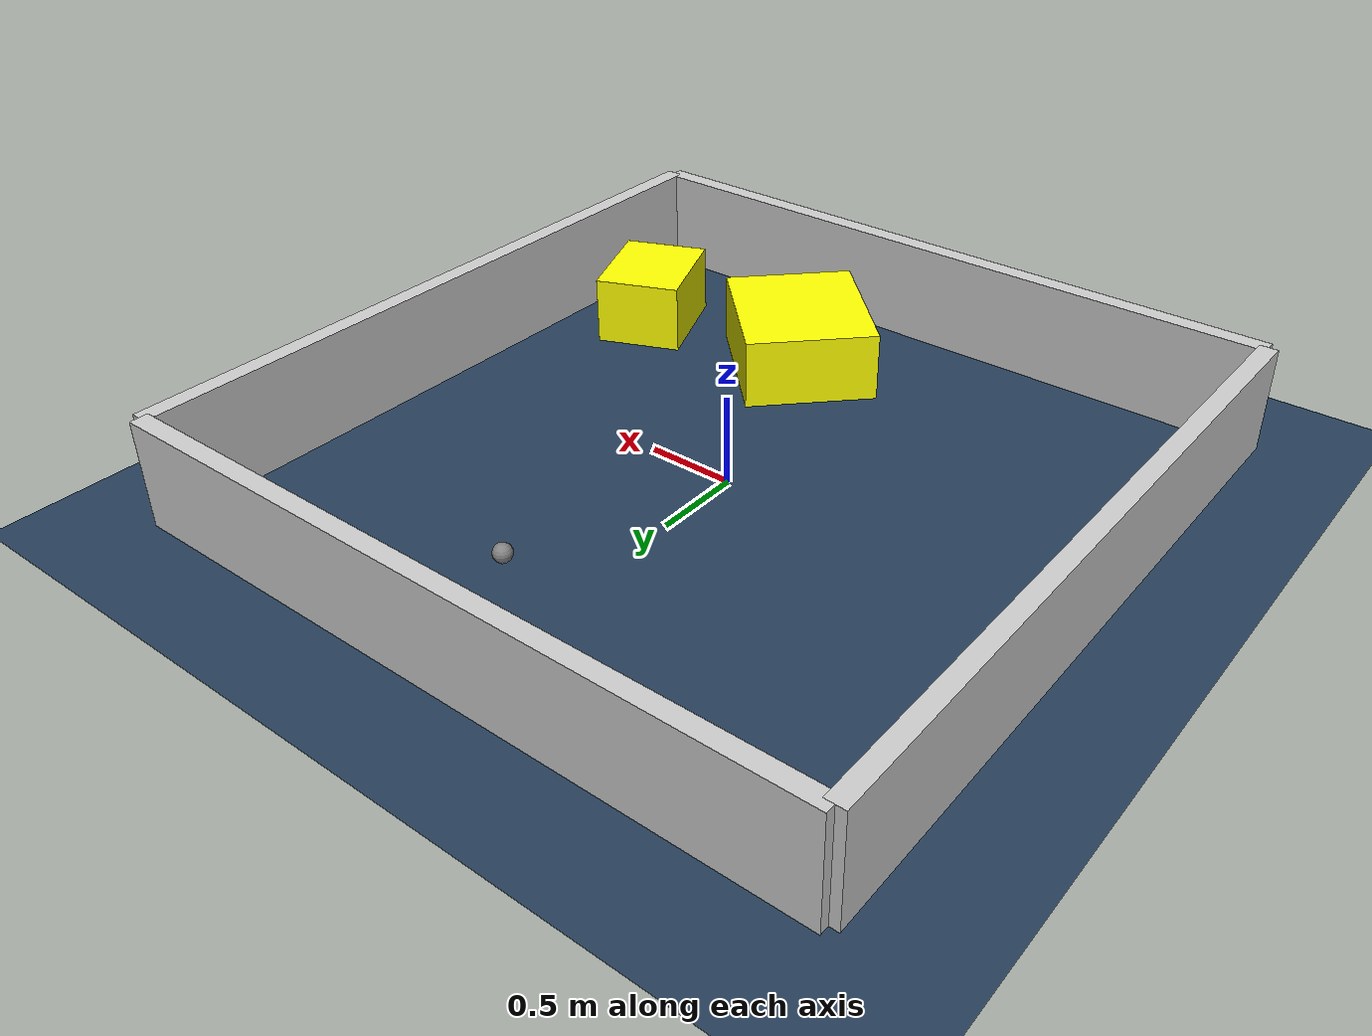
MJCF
<?xml version="1.0" ?>
<mujoco model="generated_environment">
  <option timestep="0.01" integrator="RK4" cone="elliptic"/>
  <default>
    <geom density="1"/>
  </default>
  <asset>
    <texture builtin="gradient" height="3072" rgb1="0.3 0.5 0.7" rgb2="0 0 0" type="skybox" width="512"/>
    <texture builtin="checker" height="300" mark="edge" markrgb="0.8 0.8 0.8" name="groundplane" rgb1="0.2 0.3 0.4" rgb2="0.1 0.2 0.3" type="2d" width="300"/>
    <material name="groundplane" reflectance="0.2" texrepeat="5 5" texture="groundplane" texuniform="true"/>
    <material name="robot" rgba="0.0 1.0 0.0 1"/>
  </asset>
  <worldbody>
    <light dir="0 0 -1" directional="true" pos="0 0 1.5"/>
    <geom condim="4" friction="1.0 0.005 0.001" material="groundplane" name="floor" size="0 0 0.05" type="plane"/>
    <body name="walls">
      <geom name="wall_1" condim="4" pos="-2.0 0.0 0.3" rgba="0.800000011920929 0.800000011920929 0.800000011920929 1.0" size="0.05 2.0 0.3" type="box"/>
      <geom name="wall_2" condim="4" pos="2.0 0.0 0.3" rgba="0.800000011920929 0.800000011920929 0.800000011920929 1.0" size="0.05 2.0 0.3" type="box"/>
      <geom name="wall_3" condim="4" pos="0.0 -2.0 0.3" rgba="0.800000011920929 0.800000011920929 0.800000011920929 1.0" size="2.0 0.05 0.3" type="box"/>
      <geom name="wall_4" condim="4" pos="0.0 2.0 0.3" rgba="0.800000011920929 0.800000011920929 0.800000011920929 1.0" size="2.0 0.05 0.3" type="box"/>
    </body>
    <body name="robot">
      <joint name="joint_x" type="slide" pos="0 0 0" axis="1 0 0"/>
      <joint name="joint_y" type="slide" pos="0 0 0" axis="0 1 0"/>
      <geom name="robot" type="sphere" pos="0.27256795243786636 1.3339721270023288 0.2" size="0.05" mass="5." friction="1.0 0.005 0.0001" condim="4"/>
      <site name="sensor_ball"/>
    </body>
    <body name="obstacle_1_movable">
      <geom name="obstacle_1_movable" condim="4" pos="1.4694865196114293 -1.1317822720677229 0.2" euler="0 0 202.61532205436964" friction="1.0 0.005 0.001" rgba="1 1 0 1" size="0.25147274925956753 0.3054035499150136 0.2" type="box" mass="0.1"/>
      <joint type="free"/>
    </body>
    <body name="obstacle_2_movable">
      <geom name="obstacle_2_movable" condim="4" pos="0.42777488586886636 -1.230968551778978 0.2" euler="0 0 315.1415516513904" friction="1.0 0.005 0.001" rgba="1 1 0 1" size="0.4288817997910252 0.3766080806699863 0.2" type="box" mass="0.1"/>
      <joint type="free"/>
    </body>
  </worldbody>
  <actuator>
    <motor name="actuator_x" joint="joint_x" gear="1" ctrlrange="-1 1"/>
    <motor name="actuator_y" joint="joint_y" gear="1" ctrlrange="-1 1"/>
  </actuator>
</mujoco>
